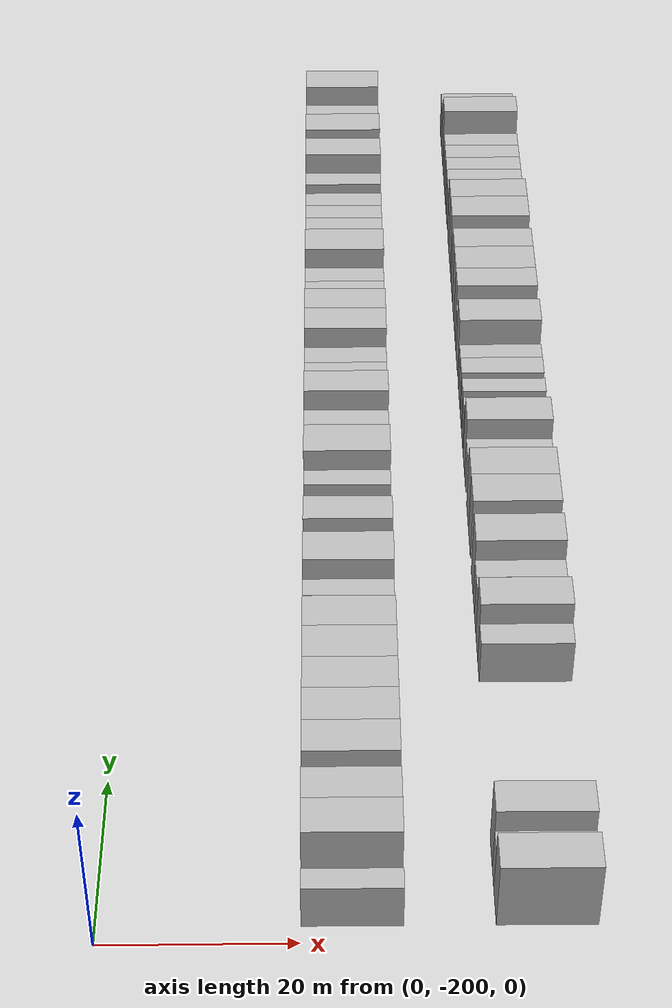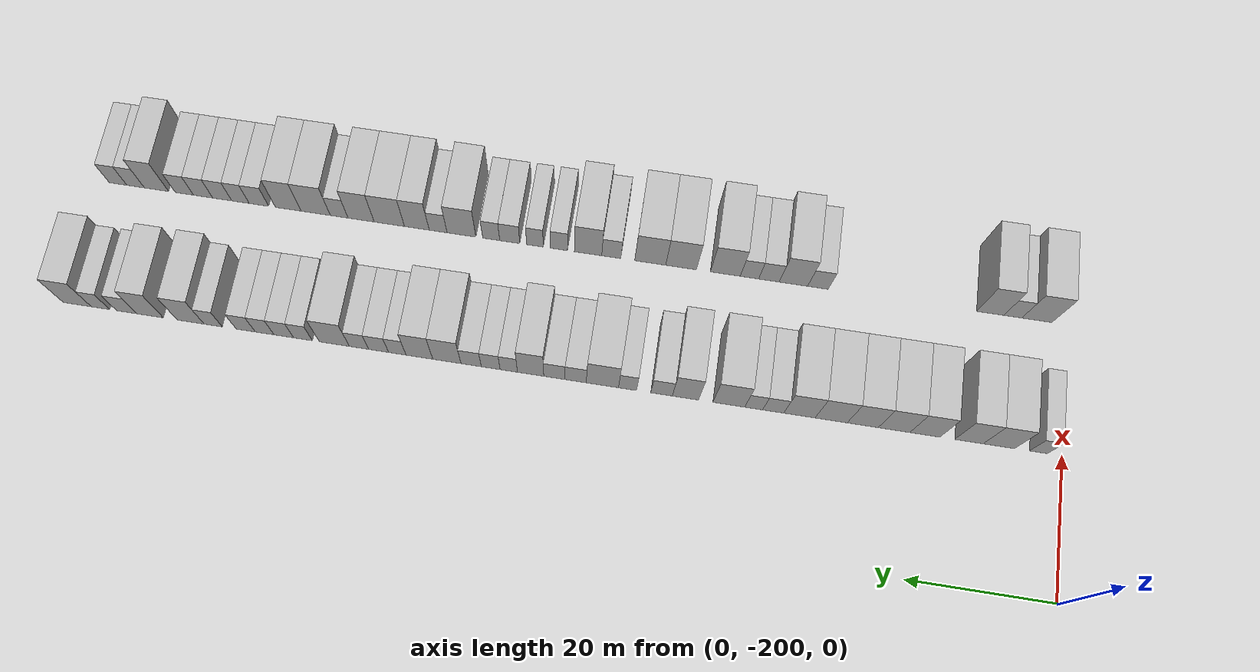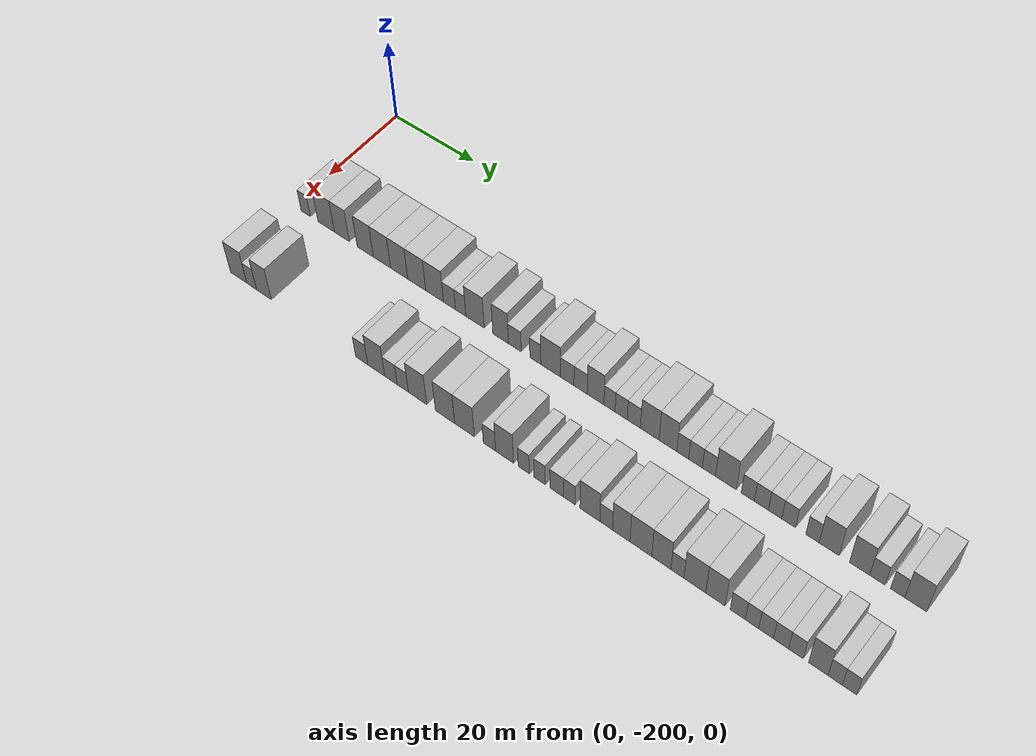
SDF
<sdf version="1.6">
 <world name="default">
  <model name="building_1">
   <static>1</static>
   <pose>25.0000 -196.7966 0 0.000000 0.000000 0.000000</pose>
   <link name="link">
    <pose>0 0 3.00 0 0 0</pose>
    <collision name="collision"><geometry><box><size>10.0000 2.4068 6.0000</size></box></geometry></collision>
    <visual name="visual">
     <cast_shadows>0</cast_shadows>
     <geometry><box><size>10.0000 2.4068 6.0000</size></box></geometry>
     <material>
      <script>
       <uri>model://HANNAS_wall/materials/scripts</uri>
       <uri>model://HANNAS_wall/materials/textures</uri>
       <name>vrc/HANNAS_wall</name>
      </script>
     </material>
    </visual>
   </link>
  </model>
  <model name="building_2">
   <static>1</static>
   <pose>25.0000 -191.4744 0 0.000000 0.000000 0.000000</pose>
   <link name="link">
    <pose>0 0 4.50 0 0 0</pose>
    <collision name="collision"><geometry><box><size>10.0000 4.2375 9.0000</size></box></geometry></collision>
    <visual name="visual">
     <cast_shadows>0</cast_shadows>
     <geometry><box><size>10.0000 4.2375 9.0000</size></box></geometry>
     <material>
      <script>
       <uri>model://HANNAS_wall/materials/scripts</uri>
       <uri>model://HANNAS_wall/materials/textures</uri>
       <name>vrc/HANNAS_wall</name>
      </script>
     </material>
    </visual>
   </link>
  </model>
  <model name="building_3">
   <static>1</static>
   <pose>25.0000 -187.4311 0 0.000000 0.000000 0.000000</pose>
   <link name="link">
    <pose>0 0 4.50 0 0 0</pose>
    <collision name="collision"><geometry><box><size>10.0000 3.8492 9.0000</size></box></geometry></collision>
    <visual name="visual">
     <cast_shadows>0</cast_shadows>
     <geometry><box><size>10.0000 3.8492 9.0000</size></box></geometry>
     <material>
      <script>
       <uri>model://HANNAS_wall/materials/scripts</uri>
       <uri>model://HANNAS_wall/materials/textures</uri>
       <name>vrc/HANNAS_wall</name>
      </script>
     </material>
    </visual>
   </link>
  </model>
  <model name="building_4">
   <static>1</static>
   <pose>25.0000 -181.4593 0 0.000000 0.000000 0.000000</pose>
   <link name="link">
    <pose>0 0 4.50 0 0 0</pose>
    <collision name="collision"><geometry><box><size>10.0000 4.0943 9.0000</size></box></geometry></collision>
    <visual name="visual">
     <cast_shadows>0</cast_shadows>
     <geometry><box><size>10.0000 4.0943 9.0000</size></box></geometry>
     <material>
      <script>
       <uri>model://HANNAS_wall/materials/scripts</uri>
       <uri>model://HANNAS_wall/materials/textures</uri>
       <name>vrc/HANNAS_wall</name>
      </script>
     </material>
    </visual>
   </link>
  </model>
  <model name="building_5">
   <static>1</static>
   <pose>25.0000 -177.2593 0 0.000000 0.000000 0.000000</pose>
   <link name="link">
    <pose>0 0 4.50 0 0 0</pose>
    <collision name="collision"><geometry><box><size>10.0000 4.3057 9.0000</size></box></geometry></collision>
    <visual name="visual">
     <cast_shadows>0</cast_shadows>
     <geometry><box><size>10.0000 4.3057 9.0000</size></box></geometry>
     <material>
      <script>
       <uri>model://HANNAS_wall/materials/scripts</uri>
       <uri>model://HANNAS_wall/materials/textures</uri>
       <name>vrc/HANNAS_wall</name>
      </script>
     </material>
    </visual>
   </link>
  </model>
  <model name="building_6">
   <static>1</static>
   <pose>25.0000 -172.9911 0 0.000000 0.000000 0.000000</pose>
   <link name="link">
    <pose>0 0 4.50 0 0 0</pose>
    <collision name="collision"><geometry><box><size>10.0000 4.2307 9.0000</size></box></geometry></collision>
    <visual name="visual">
     <cast_shadows>0</cast_shadows>
     <geometry><box><size>10.0000 4.2307 9.0000</size></box></geometry>
     <material>
      <script>
       <uri>model://HANNAS_wall/materials/scripts</uri>
       <uri>model://HANNAS_wall/materials/textures</uri>
       <name>vrc/HANNAS_wall</name>
      </script>
     </material>
    </visual>
   </link>
  </model>
  <model name="building_7">
   <static>1</static>
   <pose>25.0000 -168.6613 0 0.000000 0.000000 0.000000</pose>
   <link name="link">
    <pose>0 0 4.50 0 0 0</pose>
    <collision name="collision"><geometry><box><size>10.0000 4.4288 9.0000</size></box></geometry></collision>
    <visual name="visual">
     <cast_shadows>0</cast_shadows>
     <geometry><box><size>10.0000 4.4288 9.0000</size></box></geometry>
     <material>
      <script>
       <uri>model://HANNAS_wall/materials/scripts</uri>
       <uri>model://HANNAS_wall/materials/textures</uri>
       <name>vrc/HANNAS_wall</name>
      </script>
     </material>
    </visual>
   </link>
  </model>
  <model name="building_8">
   <static>1</static>
   <pose>25.0000 -164.3003 0 0.000000 0.000000 0.000000</pose>
   <link name="link">
    <pose>0 0 4.50 0 0 0</pose>
    <collision name="collision"><geometry><box><size>10.0000 4.2933 9.0000</size></box></geometry></collision>
    <visual name="visual">
     <cast_shadows>0</cast_shadows>
     <geometry><box><size>10.0000 4.2933 9.0000</size></box></geometry>
     <material>
      <script>
       <uri>model://HANNAS_wall/materials/scripts</uri>
       <uri>model://HANNAS_wall/materials/textures</uri>
       <name>vrc/HANNAS_wall</name>
      </script>
     </material>
    </visual>
   </link>
  </model>
  <model name="building_9">
   <static>1</static>
   <pose>25.0000 -160.7059 0 0.000000 0.000000 0.000000</pose>
   <link name="link">
    <pose>0 0 3.00 0 0 0</pose>
    <collision name="collision"><geometry><box><size>10.0000 2.8955 6.0000</size></box></geometry></collision>
    <visual name="visual">
     <cast_shadows>0</cast_shadows>
     <geometry><box><size>10.0000 2.8955 6.0000</size></box></geometry>
     <material>
      <script>
       <uri>model://HANNAS_wall/materials/scripts</uri>
       <uri>model://HANNAS_wall/materials/textures</uri>
       <name>vrc/HANNAS_wall</name>
      </script>
     </material>
    </visual>
   </link>
  </model>
  <model name="building_10">
   <static>1</static>
   <pose>25.0000 -158.0257 0 0.000000 0.000000 0.000000</pose>
   <link name="link">
    <pose>0 0 3.00 0 0 0</pose>
    <collision name="collision"><geometry><box><size>10.0000 2.4648 6.0000</size></box></geometry></collision>
    <visual name="visual">
     <cast_shadows>0</cast_shadows>
     <geometry><box><size>10.0000 2.4648 6.0000</size></box></geometry>
     <material>
      <script>
       <uri>model://HANNAS_wall/materials/scripts</uri>
       <uri>model://HANNAS_wall/materials/textures</uri>
       <name>vrc/HANNAS_wall</name>
      </script>
     </material>
    </visual>
   </link>
  </model>
  <model name="building_11">
   <static>1</static>
   <pose>25.0000 -154.6019 0 0.000000 0.000000 0.000000</pose>
   <link name="link">
    <pose>0 0 4.50 0 0 0</pose>
    <collision name="collision"><geometry><box><size>10.0000 4.3829 9.0000</size></box></geometry></collision>
    <visual name="visual">
     <cast_shadows>0</cast_shadows>
     <geometry><box><size>10.0000 4.3829 9.0000</size></box></geometry>
     <material>
      <script>
       <uri>model://HANNAS_wall/materials/scripts</uri>
       <uri>model://HANNAS_wall/materials/textures</uri>
       <name>vrc/HANNAS_wall</name>
      </script>
     </material>
    </visual>
   </link>
  </model>
  <model name="building_12">
   <static>1</static>
   <pose>25.0000 -148.5949 0 0.000000 0.000000 0.000000</pose>
   <link name="link">
    <pose>0 0 4.50 0 0 0</pose>
    <collision name="collision"><geometry><box><size>10.0000 3.6311 9.0000</size></box></geometry></collision>
    <visual name="visual">
     <cast_shadows>0</cast_shadows>
     <geometry><box><size>10.0000 3.6311 9.0000</size></box></geometry>
     <material>
      <script>
       <uri>model://HANNAS_wall/materials/scripts</uri>
       <uri>model://HANNAS_wall/materials/textures</uri>
       <name>vrc/HANNAS_wall</name>
      </script>
     </material>
    </visual>
   </link>
  </model>
  <model name="building_13">
   <static>1</static>
   <pose>25.0000 -145.2932 0 0.000000 0.000000 0.000000</pose>
   <link name="link">
    <pose>0 0 3.00 0 0 0</pose>
    <collision name="collision"><geometry><box><size>10.0000 2.9723 6.0000</size></box></geometry></collision>
    <visual name="visual">
     <cast_shadows>0</cast_shadows>
     <geometry><box><size>10.0000 2.9723 6.0000</size></box></geometry>
     <material>
      <script>
       <uri>model://HANNAS_wall/materials/scripts</uri>
       <uri>model://HANNAS_wall/materials/textures</uri>
       <name>vrc/HANNAS_wall</name>
      </script>
     </material>
    </visual>
   </link>
  </model>
  <model name="building_14">
   <static>1</static>
   <pose>25.0000 -140.5572 0 0.000000 0.000000 0.000000</pose>
   <link name="link">
    <pose>0 0 3.00 0 0 0</pose>
    <collision name="collision"><geometry><box><size>10.0000 2.4997 6.0000</size></box></geometry></collision>
    <visual name="visual">
     <cast_shadows>0</cast_shadows>
     <geometry><box><size>10.0000 2.4997 6.0000</size></box></geometry>
     <material>
      <script>
       <uri>model://HANNAS_wall/materials/scripts</uri>
       <uri>model://HANNAS_wall/materials/textures</uri>
       <name>vrc/HANNAS_wall</name>
      </script>
     </material>
    </visual>
   </link>
  </model>
  <model name="building_15">
   <static>1</static>
   <pose>25.0000 -137.0640 0 0.000000 0.000000 0.000000</pose>
   <link name="link">
    <pose>0 0 4.50 0 0 0</pose>
    <collision name="collision"><geometry><box><size>10.0000 4.4868 9.0000</size></box></geometry></collision>
    <visual name="visual">
     <cast_shadows>0</cast_shadows>
     <geometry><box><size>10.0000 4.4868 9.0000</size></box></geometry>
     <material>
      <script>
       <uri>model://HANNAS_wall/materials/scripts</uri>
       <uri>model://HANNAS_wall/materials/textures</uri>
       <name>vrc/HANNAS_wall</name>
      </script>
     </material>
    </visual>
   </link>
  </model>
  <model name="building_16">
   <static>1</static>
   <pose>25.0000 -133.3309 0 0.000000 0.000000 0.000000</pose>
   <link name="link">
    <pose>0 0 3.00 0 0 0</pose>
    <collision name="collision"><geometry><box><size>10.0000 2.9795 6.0000</size></box></geometry></collision>
    <visual name="visual">
     <cast_shadows>0</cast_shadows>
     <geometry><box><size>10.0000 2.9795 6.0000</size></box></geometry>
     <material>
      <script>
       <uri>model://HANNAS_wall/materials/scripts</uri>
       <uri>model://HANNAS_wall/materials/textures</uri>
       <name>vrc/HANNAS_wall</name>
      </script>
     </material>
    </visual>
   </link>
  </model>
  <model name="building_17">
   <static>1</static>
   <pose>25.0000 -130.3622 0 0.000000 0.000000 0.000000</pose>
   <link name="link">
    <pose>0 0 3.00 0 0 0</pose>
    <collision name="collision"><geometry><box><size>10.0000 2.9579 6.0000</size></box></geometry></collision>
    <visual name="visual">
     <cast_shadows>0</cast_shadows>
     <geometry><box><size>10.0000 2.9579 6.0000</size></box></geometry>
     <material>
      <script>
       <uri>model://HANNAS_wall/materials/scripts</uri>
       <uri>model://HANNAS_wall/materials/textures</uri>
       <name>vrc/HANNAS_wall</name>
      </script>
     </material>
    </visual>
   </link>
  </model>
  <model name="building_18">
   <static>1</static>
   <pose>25.0000 -127.0378 0 0.000000 0.000000 0.000000</pose>
   <link name="link">
    <pose>0 0 4.50 0 0 0</pose>
    <collision name="collision"><geometry><box><size>10.0000 3.6909 9.0000</size></box></geometry></collision>
    <visual name="visual">
     <cast_shadows>0</cast_shadows>
     <geometry><box><size>10.0000 3.6909 9.0000</size></box></geometry>
     <material>
      <script>
       <uri>model://HANNAS_wall/materials/scripts</uri>
       <uri>model://HANNAS_wall/materials/textures</uri>
       <name>vrc/HANNAS_wall</name>
      </script>
     </material>
    </visual>
   </link>
  </model>
  <model name="building_19">
   <static>1</static>
   <pose>25.0000 -123.9775 0 0.000000 0.000000 0.000000</pose>
   <link name="link">
    <pose>0 0 3.00 0 0 0</pose>
    <collision name="collision"><geometry><box><size>10.0000 2.4298 6.0000</size></box></geometry></collision>
    <visual name="visual">
     <cast_shadows>0</cast_shadows>
     <geometry><box><size>10.0000 2.4298 6.0000</size></box></geometry>
     <material>
      <script>
       <uri>model://HANNAS_wall/materials/scripts</uri>
       <uri>model://HANNAS_wall/materials/textures</uri>
       <name>vrc/HANNAS_wall</name>
      </script>
     </material>
    </visual>
   </link>
  </model>
  <model name="building_20">
   <static>1</static>
   <pose>25.0000 -121.4424 0 0.000000 0.000000 0.000000</pose>
   <link name="link">
    <pose>0 0 3.00 0 0 0</pose>
    <collision name="collision"><geometry><box><size>10.0000 2.6403 6.0000</size></box></geometry></collision>
    <visual name="visual">
     <cast_shadows>0</cast_shadows>
     <geometry><box><size>10.0000 2.6403 6.0000</size></box></geometry>
     <material>
      <script>
       <uri>model://HANNAS_wall/materials/scripts</uri>
       <uri>model://HANNAS_wall/materials/textures</uri>
       <name>vrc/HANNAS_wall</name>
      </script>
     </material>
    </visual>
   </link>
  </model>
  <model name="building_21">
   <static>1</static>
   <pose>25.0000 -118.6902 0 0.000000 0.000000 0.000000</pose>
   <link name="link">
    <pose>0 0 3.00 0 0 0</pose>
    <collision name="collision"><geometry><box><size>10.0000 2.8641 6.0000</size></box></geometry></collision>
    <visual name="visual">
     <cast_shadows>0</cast_shadows>
     <geometry><box><size>10.0000 2.8641 6.0000</size></box></geometry>
     <material>
      <script>
       <uri>model://HANNAS_wall/materials/scripts</uri>
       <uri>model://HANNAS_wall/materials/textures</uri>
       <name>vrc/HANNAS_wall</name>
      </script>
     </material>
    </visual>
   </link>
  </model>
  <model name="building_22">
   <static>1</static>
   <pose>25.0000 -115.2662 0 0.000000 0.000000 0.000000</pose>
   <link name="link">
    <pose>0 0 4.50 0 0 0</pose>
    <collision name="collision"><geometry><box><size>10.0000 3.9840 9.0000</size></box></geometry></collision>
    <visual name="visual">
     <cast_shadows>0</cast_shadows>
     <geometry><box><size>10.0000 3.9840 9.0000</size></box></geometry>
     <material>
      <script>
       <uri>model://HANNAS_wall/materials/scripts</uri>
       <uri>model://HANNAS_wall/materials/textures</uri>
       <name>vrc/HANNAS_wall</name>
      </script>
     </material>
    </visual>
   </link>
  </model>
  <model name="building_23">
   <static>1</static>
   <pose>25.0000 -111.3850 0 0.000000 0.000000 0.000000</pose>
   <link name="link">
    <pose>0 0 4.50 0 0 0</pose>
    <collision name="collision"><geometry><box><size>10.0000 3.7785 9.0000</size></box></geometry></collision>
    <visual name="visual">
     <cast_shadows>0</cast_shadows>
     <geometry><box><size>10.0000 3.7785 9.0000</size></box></geometry>
     <material>
      <script>
       <uri>model://HANNAS_wall/materials/scripts</uri>
       <uri>model://HANNAS_wall/materials/textures</uri>
       <name>vrc/HANNAS_wall</name>
      </script>
     </material>
    </visual>
   </link>
  </model>
  <model name="building_24">
   <static>1</static>
   <pose>25.0000 -108.2642 0 0.000000 0.000000 0.000000</pose>
   <link name="link">
    <pose>0 0 3.00 0 0 0</pose>
    <collision name="collision"><geometry><box><size>10.0000 2.4630 6.0000</size></box></geometry></collision>
    <visual name="visual">
     <cast_shadows>0</cast_shadows>
     <geometry><box><size>10.0000 2.4630 6.0000</size></box></geometry>
     <material>
      <script>
       <uri>model://HANNAS_wall/materials/scripts</uri>
       <uri>model://HANNAS_wall/materials/textures</uri>
       <name>vrc/HANNAS_wall</name>
      </script>
     </material>
    </visual>
   </link>
  </model>
  <model name="building_25">
   <static>1</static>
   <pose>25.0000 -105.6047 0 0.000000 0.000000 0.000000</pose>
   <link name="link">
    <pose>0 0 3.00 0 0 0</pose>
    <collision name="collision"><geometry><box><size>10.0000 2.8561 6.0000</size></box></geometry></collision>
    <visual name="visual">
     <cast_shadows>0</cast_shadows>
     <geometry><box><size>10.0000 2.8561 6.0000</size></box></geometry>
     <material>
      <script>
       <uri>model://HANNAS_wall/materials/scripts</uri>
       <uri>model://HANNAS_wall/materials/textures</uri>
       <name>vrc/HANNAS_wall</name>
      </script>
     </material>
    </visual>
   </link>
  </model>
  <model name="building_26">
   <static>1</static>
   <pose>25.0000 -102.8159 0 0.000000 0.000000 0.000000</pose>
   <link name="link">
    <pose>0 0 3.00 0 0 0</pose>
    <collision name="collision"><geometry><box><size>10.0000 2.7213 6.0000</size></box></geometry></collision>
    <visual name="visual">
     <cast_shadows>0</cast_shadows>
     <geometry><box><size>10.0000 2.7213 6.0000</size></box></geometry>
     <material>
      <script>
       <uri>model://HANNAS_wall/materials/scripts</uri>
       <uri>model://HANNAS_wall/materials/textures</uri>
       <name>vrc/HANNAS_wall</name>
      </script>
     </material>
    </visual>
   </link>
  </model>
  <model name="building_27">
   <static>1</static>
   <pose>25.0000 -99.3141 0 0.000000 0.000000 0.000000</pose>
   <link name="link">
    <pose>0 0 4.50 0 0 0</pose>
    <collision name="collision"><geometry><box><size>10.0000 4.2824 9.0000</size></box></geometry></collision>
    <visual name="visual">
     <cast_shadows>0</cast_shadows>
     <geometry><box><size>10.0000 4.2824 9.0000</size></box></geometry>
     <material>
      <script>
       <uri>model://HANNAS_wall/materials/scripts</uri>
       <uri>model://HANNAS_wall/materials/textures</uri>
       <name>vrc/HANNAS_wall</name>
      </script>
     </material>
    </visual>
   </link>
  </model>
  <model name="building_28">
   <static>1</static>
   <pose>25.0000 -94.8458 0 0.000000 0.000000 0.000000</pose>
   <link name="link">
    <pose>0 0 3.00 0 0 0</pose>
    <collision name="collision"><geometry><box><size>10.0000 2.6542 6.0000</size></box></geometry></collision>
    <visual name="visual">
     <cast_shadows>0</cast_shadows>
     <geometry><box><size>10.0000 2.6542 6.0000</size></box></geometry>
     <material>
      <script>
       <uri>model://HANNAS_wall/materials/scripts</uri>
       <uri>model://HANNAS_wall/materials/textures</uri>
       <name>vrc/HANNAS_wall</name>
      </script>
     </material>
    </visual>
   </link>
  </model>
  <model name="building_29">
   <static>1</static>
   <pose>25.0000 -92.1096 0 0.000000 0.000000 0.000000</pose>
   <link name="link">
    <pose>0 0 3.00 0 0 0</pose>
    <collision name="collision"><geometry><box><size>10.0000 2.8182 6.0000</size></box></geometry></collision>
    <visual name="visual">
     <cast_shadows>0</cast_shadows>
     <geometry><box><size>10.0000 2.8182 6.0000</size></box></geometry>
     <material>
      <script>
       <uri>model://HANNAS_wall/materials/scripts</uri>
       <uri>model://HANNAS_wall/materials/textures</uri>
       <name>vrc/HANNAS_wall</name>
      </script>
     </material>
    </visual>
   </link>
  </model>
  <model name="building_30">
   <static>1</static>
   <pose>25.0000 -89.3585 0 0.000000 0.000000 0.000000</pose>
   <link name="link">
    <pose>0 0 3.00 0 0 0</pose>
    <collision name="collision"><geometry><box><size>10.0000 2.6840 6.0000</size></box></geometry></collision>
    <visual name="visual">
     <cast_shadows>0</cast_shadows>
     <geometry><box><size>10.0000 2.6840 6.0000</size></box></geometry>
     <material>
      <script>
       <uri>model://HANNAS_wall/materials/scripts</uri>
       <uri>model://HANNAS_wall/materials/textures</uri>
       <name>vrc/HANNAS_wall</name>
      </script>
     </material>
    </visual>
   </link>
  </model>
  <model name="building_31">
   <static>1</static>
   <pose>25.0000 -86.6385 0 0.000000 0.000000 0.000000</pose>
   <link name="link">
    <pose>0 0 3.00 0 0 0</pose>
    <collision name="collision"><geometry><box><size>10.0000 2.7559 6.0000</size></box></geometry></collision>
    <visual name="visual">
     <cast_shadows>0</cast_shadows>
     <geometry><box><size>10.0000 2.7559 6.0000</size></box></geometry>
     <material>
      <script>
       <uri>model://HANNAS_wall/materials/scripts</uri>
       <uri>model://HANNAS_wall/materials/textures</uri>
       <name>vrc/HANNAS_wall</name>
      </script>
     </material>
    </visual>
   </link>
  </model>
  <model name="building_32">
   <static>1</static>
   <pose>25.0000 -81.9549 0 0.000000 0.000000 0.000000</pose>
   <link name="link">
    <pose>0 0 3.00 0 0 0</pose>
    <collision name="collision"><geometry><box><size>10.0000 2.6114 6.0000</size></box></geometry></collision>
    <visual name="visual">
     <cast_shadows>0</cast_shadows>
     <geometry><box><size>10.0000 2.6114 6.0000</size></box></geometry>
     <material>
      <script>
       <uri>model://HANNAS_wall/materials/scripts</uri>
       <uri>model://HANNAS_wall/materials/textures</uri>
       <name>vrc/HANNAS_wall</name>
      </script>
     </material>
    </visual>
   </link>
  </model>
  <model name="building_33">
   <static>1</static>
   <pose>25.0000 -78.7079 0 0.000000 0.000000 0.000000</pose>
   <link name="link">
    <pose>0 0 4.50 0 0 0</pose>
    <collision name="collision"><geometry><box><size>10.0000 3.8826 9.0000</size></box></geometry></collision>
    <visual name="visual">
     <cast_shadows>0</cast_shadows>
     <geometry><box><size>10.0000 3.8826 9.0000</size></box></geometry>
     <material>
      <script>
       <uri>model://HANNAS_wall/materials/scripts</uri>
       <uri>model://HANNAS_wall/materials/textures</uri>
       <name>vrc/HANNAS_wall</name>
      </script>
     </material>
    </visual>
   </link>
  </model>
  <model name="building_34">
   <static>1</static>
   <pose>25.0000 -72.8386 0 0.000000 0.000000 0.000000</pose>
   <link name="link">
    <pose>0 0 4.50 0 0 0</pose>
    <collision name="collision"><geometry><box><size>10.0000 3.8561 9.0000</size></box></geometry></collision>
    <visual name="visual">
     <cast_shadows>0</cast_shadows>
     <geometry><box><size>10.0000 3.8561 9.0000</size></box></geometry>
     <material>
      <script>
       <uri>model://HANNAS_wall/materials/scripts</uri>
       <uri>model://HANNAS_wall/materials/textures</uri>
       <name>vrc/HANNAS_wall</name>
      </script>
     </material>
    </visual>
   </link>
  </model>
  <model name="building_35">
   <static>1</static>
   <pose>25.0000 -69.4504 0 0.000000 0.000000 0.000000</pose>
   <link name="link">
    <pose>0 0 3.00 0 0 0</pose>
    <collision name="collision"><geometry><box><size>10.0000 2.9203 6.0000</size></box></geometry></collision>
    <visual name="visual">
     <cast_shadows>0</cast_shadows>
     <geometry><box><size>10.0000 2.9203 6.0000</size></box></geometry>
     <material>
      <script>
       <uri>model://HANNAS_wall/materials/scripts</uri>
       <uri>model://HANNAS_wall/materials/textures</uri>
       <name>vrc/HANNAS_wall</name>
      </script>
     </material>
    </visual>
   </link>
  </model>
  <model name="building_36">
   <static>1</static>
   <pose>25.0000 -65.6595 0 0.000000 0.000000 0.000000</pose>
   <link name="link">
    <pose>0 0 3.00 0 0 0</pose>
    <collision name="collision"><geometry><box><size>10.0000 2.6615 6.0000</size></box></geometry></collision>
    <visual name="visual">
     <cast_shadows>0</cast_shadows>
     <geometry><box><size>10.0000 2.6615 6.0000</size></box></geometry>
     <material>
      <script>
       <uri>model://HANNAS_wall/materials/scripts</uri>
       <uri>model://HANNAS_wall/materials/textures</uri>
       <name>vrc/HANNAS_wall</name>
      </script>
     </material>
    </visual>
   </link>
  </model>
  <model name="building_37">
   <static>1</static>
   <pose>25.0000 -62.2819 0 0.000000 0.000000 0.000000</pose>
   <link name="link">
    <pose>0 0 4.50 0 0 0</pose>
    <collision name="collision"><geometry><box><size>10.0000 4.0937 9.0000</size></box></geometry></collision>
    <visual name="visual">
     <cast_shadows>0</cast_shadows>
     <geometry><box><size>10.0000 4.0937 9.0000</size></box></geometry>
     <material>
      <script>
       <uri>model://HANNAS_wall/materials/scripts</uri>
       <uri>model://HANNAS_wall/materials/textures</uri>
       <name>vrc/HANNAS_wall</name>
      </script>
     </material>
    </visual>
   </link>
  </model>
  <model name="building_106">
   <static>1</static>
   <pose>44.0000 -195.8919 0 0.000000 0.000000 0.000000</pose>
   <link name="link">
    <pose>0 0 4.50 0 0 0</pose>
    <collision name="collision"><geometry><box><size>10.0000 4.2161 9.0000</size></box></geometry></collision>
    <visual name="visual">
     <cast_shadows>0</cast_shadows>
     <geometry><box><size>10.0000 4.2161 9.0000</size></box></geometry>
     <material>
      <script>
       <uri>model://HANNAS_wall/materials/scripts</uri>
       <uri>model://HANNAS_wall/materials/textures</uri>
       <name>vrc/HANNAS_wall</name>
      </script>
     </material>
    </visual>
   </link>
  </model>
  <model name="building_107">
   <static>1</static>
   <pose>44.0000 -192.5275 0 0.000000 0.000000 0.000000</pose>
   <link name="link">
    <pose>0 0 3.00 0 0 0</pose>
    <collision name="collision"><geometry><box><size>10.0000 2.5127 6.0000</size></box></geometry></collision>
    <visual name="visual">
     <cast_shadows>0</cast_shadows>
     <geometry><box><size>10.0000 2.5127 6.0000</size></box></geometry>
     <material>
      <script>
       <uri>model://HANNAS_wall/materials/scripts</uri>
       <uri>model://HANNAS_wall/materials/textures</uri>
       <name>vrc/HANNAS_wall</name>
      </script>
     </material>
    </visual>
   </link>
  </model>
  <model name="building_108">
   <static>1</static>
   <pose>44.0000 -189.3640 0 0.000000 0.000000 0.000000</pose>
   <link name="link">
    <pose>0 0 4.50 0 0 0</pose>
    <collision name="collision"><geometry><box><size>10.0000 3.8144 9.0000</size></box></geometry></collision>
    <visual name="visual">
     <cast_shadows>0</cast_shadows>
     <geometry><box><size>10.0000 3.8144 9.0000</size></box></geometry>
     <material>
      <script>
       <uri>model://HANNAS_wall/materials/scripts</uri>
       <uri>model://HANNAS_wall/materials/textures</uri>
       <name>vrc/HANNAS_wall</name>
      </script>
     </material>
    </visual>
   </link>
  </model>
  <model name="building_109">
   <static>1</static>
   <pose>44.0000 -165.0842 0 0.000000 0.000000 0.000000</pose>
   <link name="link">
    <pose>0 0 3.00 0 0 0</pose>
    <collision name="collision"><geometry><box><size>10.0000 2.9151 6.0000</size></box></geometry></collision>
    <visual name="visual">
     <cast_shadows>0</cast_shadows>
     <geometry><box><size>10.0000 2.9151 6.0000</size></box></geometry>
     <material>
      <script>
       <uri>model://HANNAS_wall/materials/scripts</uri>
       <uri>model://HANNAS_wall/materials/textures</uri>
       <name>vrc/HANNAS_wall</name>
      </script>
     </material>
    </visual>
   </link>
  </model>
  <model name="building_110">
   <static>1</static>
   <pose>44.0000 -161.6071 0 0.000000 0.000000 0.000000</pose>
   <link name="link">
    <pose>0 0 4.50 0 0 0</pose>
    <collision name="collision"><geometry><box><size>10.0000 4.0391 9.0000</size></box></geometry></collision>
    <visual name="visual">
     <cast_shadows>0</cast_shadows>
     <geometry><box><size>10.0000 4.0391 9.0000</size></box></geometry>
     <material>
      <script>
       <uri>model://HANNAS_wall/materials/scripts</uri>
       <uri>model://HANNAS_wall/materials/textures</uri>
       <name>vrc/HANNAS_wall</name>
      </script>
     </material>
    </visual>
   </link>
  </model>
  <model name="building_111">
   <static>1</static>
   <pose>44.0000 -158.1224 0 0.000000 0.000000 0.000000</pose>
   <link name="link">
    <pose>0 0 3.00 0 0 0</pose>
    <collision name="collision"><geometry><box><size>10.0000 2.9303 6.0000</size></box></geometry></collision>
    <visual name="visual">
     <cast_shadows>0</cast_shadows>
     <geometry><box><size>10.0000 2.9303 6.0000</size></box></geometry>
     <material>
      <script>
       <uri>model://HANNAS_wall/materials/scripts</uri>
       <uri>model://HANNAS_wall/materials/textures</uri>
       <name>vrc/HANNAS_wall</name>
      </script>
     </material>
    </visual>
   </link>
  </model>
  <model name="building_112">
   <static>1</static>
   <pose>44.0000 -155.3445 0 0.000000 0.000000 0.000000</pose>
   <link name="link">
    <pose>0 0 3.00 0 0 0</pose>
    <collision name="collision"><geometry><box><size>10.0000 2.6254 6.0000</size></box></geometry></collision>
    <visual name="visual">
     <cast_shadows>0</cast_shadows>
     <geometry><box><size>10.0000 2.6254 6.0000</size></box></geometry>
     <material>
      <script>
       <uri>model://HANNAS_wall/materials/scripts</uri>
       <uri>model://HANNAS_wall/materials/textures</uri>
       <name>vrc/HANNAS_wall</name>
      </script>
     </material>
    </visual>
   </link>
  </model>
  <model name="building_113">
   <static>1</static>
   <pose>44.0000 -151.8954 0 0.000000 0.000000 0.000000</pose>
   <link name="link">
    <pose>0 0 4.50 0 0 0</pose>
    <collision name="collision"><geometry><box><size>10.0000 4.2728 9.0000</size></box></geometry></collision>
    <visual name="visual">
     <cast_shadows>0</cast_shadows>
     <geometry><box><size>10.0000 4.2728 9.0000</size></box></geometry>
     <material>
      <script>
       <uri>model://HANNAS_wall/materials/scripts</uri>
       <uri>model://HANNAS_wall/materials/textures</uri>
       <name>vrc/HANNAS_wall</name>
      </script>
     </material>
    </visual>
   </link>
  </model>
  <model name="building_114">
   <static>1</static>
   <pose>44.0000 -145.5556 0 0.000000 0.000000 0.000000</pose>
   <link name="link">
    <pose>0 0 4.50 0 0 0</pose>
    <collision name="collision"><geometry><box><size>10.0000 4.4068 9.0000</size></box></geometry></collision>
    <visual name="visual">
     <cast_shadows>0</cast_shadows>
     <geometry><box><size>10.0000 4.4068 9.0000</size></box></geometry>
     <material>
      <script>
       <uri>model://HANNAS_wall/materials/scripts</uri>
       <uri>model://HANNAS_wall/materials/textures</uri>
       <name>vrc/HANNAS_wall</name>
      </script>
     </material>
    </visual>
   </link>
  </model>
  <model name="building_115">
   <static>1</static>
   <pose>44.0000 -141.1200 0 0.000000 0.000000 0.000000</pose>
   <link name="link">
    <pose>0 0 4.50 0 0 0</pose>
    <collision name="collision"><geometry><box><size>10.0000 4.4644 9.0000</size></box></geometry></collision>
    <visual name="visual">
     <cast_shadows>0</cast_shadows>
     <geometry><box><size>10.0000 4.4644 9.0000</size></box></geometry>
     <material>
      <script>
       <uri>model://HANNAS_wall/materials/scripts</uri>
       <uri>model://HANNAS_wall/materials/textures</uri>
       <name>vrc/HANNAS_wall</name>
      </script>
     </material>
    </visual>
   </link>
  </model>
  <model name="building_116">
   <static>1</static>
   <pose>44.0000 -135.5130 0 0.000000 0.000000 0.000000</pose>
   <link name="link">
    <pose>0 0 3.00 0 0 0</pose>
    <collision name="collision"><geometry><box><size>10.0000 2.7496 6.0000</size></box></geometry></collision>
    <visual name="visual">
     <cast_shadows>0</cast_shadows>
     <geometry><box><size>10.0000 2.7496 6.0000</size></box></geometry>
     <material>
      <script>
       <uri>model://HANNAS_wall/materials/scripts</uri>
       <uri>model://HANNAS_wall/materials/textures</uri>
       <name>vrc/HANNAS_wall</name>
      </script>
     </material>
    </visual>
   </link>
  </model>
  <model name="building_117">
   <static>1</static>
   <pose>44.0000 -132.1596 0 0.000000 0.000000 0.000000</pose>
   <link name="link">
    <pose>0 0 4.50 0 0 0</pose>
    <collision name="collision"><geometry><box><size>10.0000 3.9571 9.0000</size></box></geometry></collision>
    <visual name="visual">
     <cast_shadows>0</cast_shadows>
     <geometry><box><size>10.0000 3.9571 9.0000</size></box></geometry>
     <material>
      <script>
       <uri>model://HANNAS_wall/materials/scripts</uri>
       <uri>model://HANNAS_wall/materials/textures</uri>
       <name>vrc/HANNAS_wall</name>
      </script>
     </material>
    </visual>
   </link>
  </model>
  <model name="building_118">
   <static>1</static>
   <pose>44.0000 -127.9338 0 0.000000 0.000000 0.000000</pose>
   <link name="link">
    <pose>0 0 3.00 0 0 0</pose>
    <collision name="collision"><geometry><box><size>10.0000 2.4944 6.0000</size></box></geometry></collision>
    <visual name="visual">
     <cast_shadows>0</cast_shadows>
     <geometry><box><size>10.0000 2.4944 6.0000</size></box></geometry>
     <material>
      <script>
       <uri>model://HANNAS_wall/materials/scripts</uri>
       <uri>model://HANNAS_wall/materials/textures</uri>
       <name>vrc/HANNAS_wall</name>
      </script>
     </material>
    </visual>
   </link>
  </model>
  <model name="building_119">
   <static>1</static>
   <pose>44.0000 -124.4778 0 0.000000 0.000000 0.000000</pose>
   <link name="link">
    <pose>0 0 3.00 0 0 0</pose>
    <collision name="collision"><geometry><box><size>10.0000 2.4176 6.0000</size></box></geometry></collision>
    <visual name="visual">
     <cast_shadows>0</cast_shadows>
     <geometry><box><size>10.0000 2.4176 6.0000</size></box></geometry>
     <material>
      <script>
       <uri>model://HANNAS_wall/materials/scripts</uri>
       <uri>model://HANNAS_wall/materials/textures</uri>
       <name>vrc/HANNAS_wall</name>
      </script>
     </material>
    </visual>
   </link>
  </model>
  <model name="building_120">
   <static>1</static>
   <pose>44.0000 -120.8111 0 0.000000 0.000000 0.000000</pose>
   <link name="link">
    <pose>0 0 3.00 0 0 0</pose>
    <collision name="collision"><geometry><box><size>10.0000 2.9159 6.0000</size></box></geometry></collision>
    <visual name="visual">
     <cast_shadows>0</cast_shadows>
     <geometry><box><size>10.0000 2.9159 6.0000</size></box></geometry>
     <material>
      <script>
       <uri>model://HANNAS_wall/materials/scripts</uri>
       <uri>model://HANNAS_wall/materials/textures</uri>
       <name>vrc/HANNAS_wall</name>
      </script>
     </material>
    </visual>
   </link>
  </model>
  <model name="building_121">
   <static>1</static>
   <pose>44.0000 -118.1177 0 0.000000 0.000000 0.000000</pose>
   <link name="link">
    <pose>0 0 3.00 0 0 0</pose>
    <collision name="collision"><geometry><box><size>10.0000 2.4707 6.0000</size></box></geometry></collision>
    <visual name="visual">
     <cast_shadows>0</cast_shadows>
     <geometry><box><size>10.0000 2.4707 6.0000</size></box></geometry>
     <material>
      <script>
       <uri>model://HANNAS_wall/materials/scripts</uri>
       <uri>model://HANNAS_wall/materials/textures</uri>
       <name>vrc/HANNAS_wall</name>
      </script>
     </material>
    </visual>
   </link>
  </model>
  <model name="building_122">
   <static>1</static>
   <pose>44.0000 -113.7785 0 0.000000 0.000000 0.000000</pose>
   <link name="link">
    <pose>0 0 4.50 0 0 0</pose>
    <collision name="collision"><geometry><box><size>10.0000 4.2076 9.0000</size></box></geometry></collision>
    <visual name="visual">
     <cast_shadows>0</cast_shadows>
     <geometry><box><size>10.0000 4.2076 9.0000</size></box></geometry>
     <material>
      <script>
       <uri>model://HANNAS_wall/materials/scripts</uri>
       <uri>model://HANNAS_wall/materials/textures</uri>
       <name>vrc/HANNAS_wall</name>
      </script>
     </material>
    </visual>
   </link>
  </model>
  <model name="building_123">
   <static>1</static>
   <pose>44.0000 -110.3698 0 0.000000 0.000000 0.000000</pose>
   <link name="link">
    <pose>0 0 3.00 0 0 0</pose>
    <collision name="collision"><geometry><box><size>10.0000 2.6098 6.0000</size></box></geometry></collision>
    <visual name="visual">
     <cast_shadows>0</cast_shadows>
     <geometry><box><size>10.0000 2.6098 6.0000</size></box></geometry>
     <material>
      <script>
       <uri>model://HANNAS_wall/materials/scripts</uri>
       <uri>model://HANNAS_wall/materials/textures</uri>
       <name>vrc/HANNAS_wall</name>
      </script>
     </material>
    </visual>
   </link>
  </model>
  <model name="building_124">
   <static>1</static>
   <pose>44.0000 -107.2517 0 0.000000 0.000000 0.000000</pose>
   <link name="link">
    <pose>0 0 4.50 0 0 0</pose>
    <collision name="collision"><geometry><box><size>10.0000 3.6264 9.0000</size></box></geometry></collision>
    <visual name="visual">
     <cast_shadows>0</cast_shadows>
     <geometry><box><size>10.0000 3.6264 9.0000</size></box></geometry>
     <material>
      <script>
       <uri>model://HANNAS_wall/materials/scripts</uri>
       <uri>model://HANNAS_wall/materials/textures</uri>
       <name>vrc/HANNAS_wall</name>
      </script>
     </material>
    </visual>
   </link>
  </model>
  <model name="building_125">
   <static>1</static>
   <pose>44.0000 -103.2124 0 0.000000 0.000000 0.000000</pose>
   <link name="link">
    <pose>0 0 4.50 0 0 0</pose>
    <collision name="collision"><geometry><box><size>10.0000 4.4522 9.0000</size></box></geometry></collision>
    <visual name="visual">
     <cast_shadows>0</cast_shadows>
     <geometry><box><size>10.0000 4.4522 9.0000</size></box></geometry>
     <material>
      <script>
       <uri>model://HANNAS_wall/materials/scripts</uri>
       <uri>model://HANNAS_wall/materials/textures</uri>
       <name>vrc/HANNAS_wall</name>
      </script>
     </material>
    </visual>
   </link>
  </model>
  <model name="building_126">
   <static>1</static>
   <pose>44.0000 -99.0583 0 0.000000 0.000000 0.000000</pose>
   <link name="link">
    <pose>0 0 4.50 0 0 0</pose>
    <collision name="collision"><geometry><box><size>10.0000 3.8561 9.0000</size></box></geometry></collision>
    <visual name="visual">
     <cast_shadows>0</cast_shadows>
     <geometry><box><size>10.0000 3.8561 9.0000</size></box></geometry>
     <material>
      <script>
       <uri>model://HANNAS_wall/materials/scripts</uri>
       <uri>model://HANNAS_wall/materials/textures</uri>
       <name>vrc/HANNAS_wall</name>
      </script>
     </material>
    </visual>
   </link>
  </model>
  <model name="building_127">
   <static>1</static>
   <pose>44.0000 -95.8284 0 0.000000 0.000000 0.000000</pose>
   <link name="link">
    <pose>0 0 3.00 0 0 0</pose>
    <collision name="collision"><geometry><box><size>10.0000 2.6038 6.0000</size></box></geometry></collision>
    <visual name="visual">
     <cast_shadows>0</cast_shadows>
     <geometry><box><size>10.0000 2.6038 6.0000</size></box></geometry>
     <material>
      <script>
       <uri>model://HANNAS_wall/materials/scripts</uri>
       <uri>model://HANNAS_wall/materials/textures</uri>
       <name>vrc/HANNAS_wall</name>
      </script>
     </material>
    </visual>
   </link>
  </model>
  <model name="building_128">
   <static>1</static>
   <pose>44.0000 -92.3631 0 0.000000 0.000000 0.000000</pose>
   <link name="link">
    <pose>0 0 4.50 0 0 0</pose>
    <collision name="collision"><geometry><box><size>10.0000 4.3267 9.0000</size></box></geometry></collision>
    <visual name="visual">
     <cast_shadows>0</cast_shadows>
     <geometry><box><size>10.0000 4.3267 9.0000</size></box></geometry>
     <material>
      <script>
       <uri>model://HANNAS_wall/materials/scripts</uri>
       <uri>model://HANNAS_wall/materials/textures</uri>
       <name>vrc/HANNAS_wall</name>
      </script>
     </material>
    </visual>
   </link>
  </model>
  <model name="building_129">
   <static>1</static>
   <pose>44.0000 -88.2978 0 0.000000 0.000000 0.000000</pose>
   <link name="link">
    <pose>0 0 4.50 0 0 0</pose>
    <collision name="collision"><geometry><box><size>10.0000 3.8040 9.0000</size></box></geometry></collision>
    <visual name="visual">
     <cast_shadows>0</cast_shadows>
     <geometry><box><size>10.0000 3.8040 9.0000</size></box></geometry>
     <material>
      <script>
       <uri>model://HANNAS_wall/materials/scripts</uri>
       <uri>model://HANNAS_wall/materials/textures</uri>
       <name>vrc/HANNAS_wall</name>
      </script>
     </material>
    </visual>
   </link>
  </model>
  <model name="building_130">
   <static>1</static>
   <pose>44.0000 -83.9469 0 0.000000 0.000000 0.000000</pose>
   <link name="link">
    <pose>0 0 3.00 0 0 0</pose>
    <collision name="collision"><geometry><box><size>10.0000 2.8979 6.0000</size></box></geometry></collision>
    <visual name="visual">
     <cast_shadows>0</cast_shadows>
     <geometry><box><size>10.0000 2.8979 6.0000</size></box></geometry>
     <material>
      <script>
       <uri>model://HANNAS_wall/materials/scripts</uri>
       <uri>model://HANNAS_wall/materials/textures</uri>
       <name>vrc/HANNAS_wall</name>
      </script>
     </material>
    </visual>
   </link>
  </model>
  <model name="building_131">
   <static>1</static>
   <pose>44.0000 -81.2053 0 0.000000 0.000000 0.000000</pose>
   <link name="link">
    <pose>0 0 3.00 0 0 0</pose>
    <collision name="collision"><geometry><box><size>10.0000 2.5852 6.0000</size></box></geometry></collision>
    <visual name="visual">
     <cast_shadows>0</cast_shadows>
     <geometry><box><size>10.0000 2.5852 6.0000</size></box></geometry>
     <material>
      <script>
       <uri>model://HANNAS_wall/materials/scripts</uri>
       <uri>model://HANNAS_wall/materials/textures</uri>
       <name>vrc/HANNAS_wall</name>
      </script>
     </material>
    </visual>
   </link>
  </model>
  <model name="building_132">
   <static>1</static>
   <pose>44.0000 -78.4952 0 0.000000 0.000000 0.000000</pose>
   <link name="link">
    <pose>0 0 3.00 0 0 0</pose>
    <collision name="collision"><geometry><box><size>10.0000 2.8350 6.0000</size></box></geometry></collision>
    <visual name="visual">
     <cast_shadows>0</cast_shadows>
     <geometry><box><size>10.0000 2.8350 6.0000</size></box></geometry>
     <material>
      <script>
       <uri>model://HANNAS_wall/materials/scripts</uri>
       <uri>model://HANNAS_wall/materials/textures</uri>
       <name>vrc/HANNAS_wall</name>
      </script>
     </material>
    </visual>
   </link>
  </model>
  <model name="building_133">
   <static>1</static>
   <pose>44.0000 -75.6483 0 0.000000 0.000000 0.000000</pose>
   <link name="link">
    <pose>0 0 3.00 0 0 0</pose>
    <collision name="collision"><geometry><box><size>10.0000 2.8588 6.0000</size></box></geometry></collision>
    <visual name="visual">
     <cast_shadows>0</cast_shadows>
     <geometry><box><size>10.0000 2.8588 6.0000</size></box></geometry>
     <material>
      <script>
       <uri>model://HANNAS_wall/materials/scripts</uri>
       <uri>model://HANNAS_wall/materials/textures</uri>
       <name>vrc/HANNAS_wall</name>
      </script>
     </material>
    </visual>
   </link>
  </model>
  <model name="building_134">
   <static>1</static>
   <pose>44.0000 -72.8462 0 0.000000 0.000000 0.000000</pose>
   <link name="link">
    <pose>0 0 3.00 0 0 0</pose>
    <collision name="collision"><geometry><box><size>10.0000 2.7454 6.0000</size></box></geometry></collision>
    <visual name="visual">
     <cast_shadows>0</cast_shadows>
     <geometry><box><size>10.0000 2.7454 6.0000</size></box></geometry>
     <material>
      <script>
       <uri>model://HANNAS_wall/materials/scripts</uri>
       <uri>model://HANNAS_wall/materials/textures</uri>
       <name>vrc/HANNAS_wall</name>
      </script>
     </material>
    </visual>
   </link>
  </model>
  <model name="building_135">
   <static>1</static>
   <pose>44.0000 -68.6652 0 0.000000 0.000000 0.000000</pose>
   <link name="link">
    <pose>0 0 4.50 0 0 0</pose>
    <collision name="collision"><geometry><box><size>10.0000 3.6164 9.0000</size></box></geometry></collision>
    <visual name="visual">
     <cast_shadows>0</cast_shadows>
     <geometry><box><size>10.0000 3.6164 9.0000</size></box></geometry>
     <material>
      <script>
       <uri>model://HANNAS_wall/materials/scripts</uri>
       <uri>model://HANNAS_wall/materials/textures</uri>
       <name>vrc/HANNAS_wall</name>
      </script>
     </material>
    </visual>
   </link>
  </model>
  <model name="building_136">
   <static>1</static>
   <pose>44.0000 -65.5469 0 0.000000 0.000000 0.000000</pose>
   <link name="link">
    <pose>0 0 3.00 0 0 0</pose>
    <collision name="collision"><geometry><box><size>10.0000 2.6204 6.0000</size></box></geometry></collision>
    <visual name="visual">
     <cast_shadows>0</cast_shadows>
     <geometry><box><size>10.0000 2.6204 6.0000</size></box></geometry>
     <material>
      <script>
       <uri>model://HANNAS_wall/materials/scripts</uri>
       <uri>model://HANNAS_wall/materials/textures</uri>
       <name>vrc/HANNAS_wall</name>
      </script>
     </material>
    </visual>
   </link>
  </model>
  <model name="building_137">
   <static>1</static>
   <pose>44.0000 -62.9104 0 0.000000 0.000000 0.000000</pose>
   <link name="link">
    <pose>0 0 3.00 0 0 0</pose>
    <collision name="collision"><geometry><box><size>10.0000 2.6525 6.0000</size></box></geometry></collision>
    <visual name="visual">
     <cast_shadows>0</cast_shadows>
     <geometry><box><size>10.0000 2.6525 6.0000</size></box></geometry>
     <material>
      <script>
       <uri>model://HANNAS_wall/materials/scripts</uri>
       <uri>model://HANNAS_wall/materials/textures</uri>
       <name>vrc/HANNAS_wall</name>
      </script>
     </material>
    </visual>
   </link>
  </model>
 </world>
</sdf>
